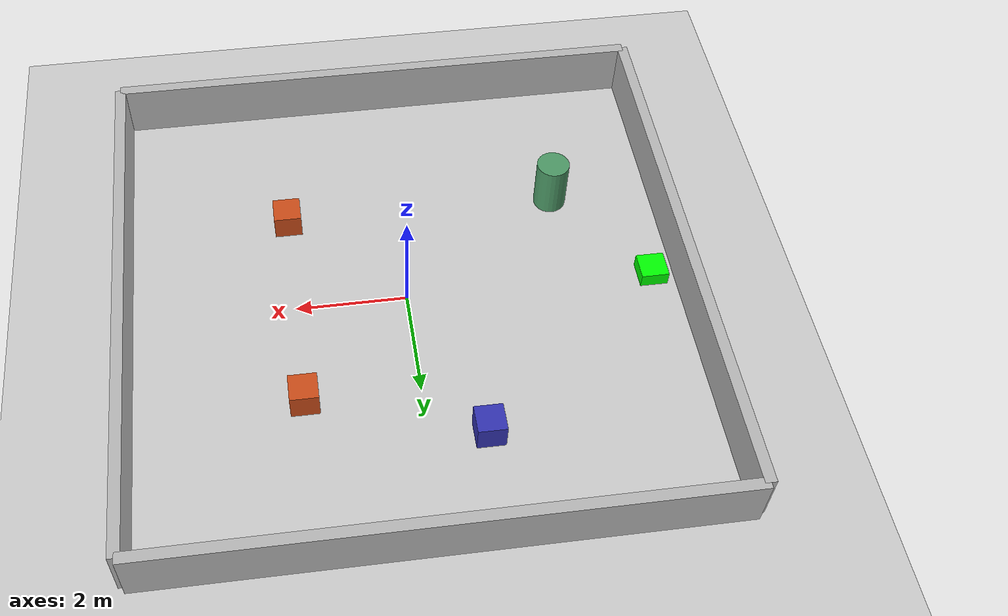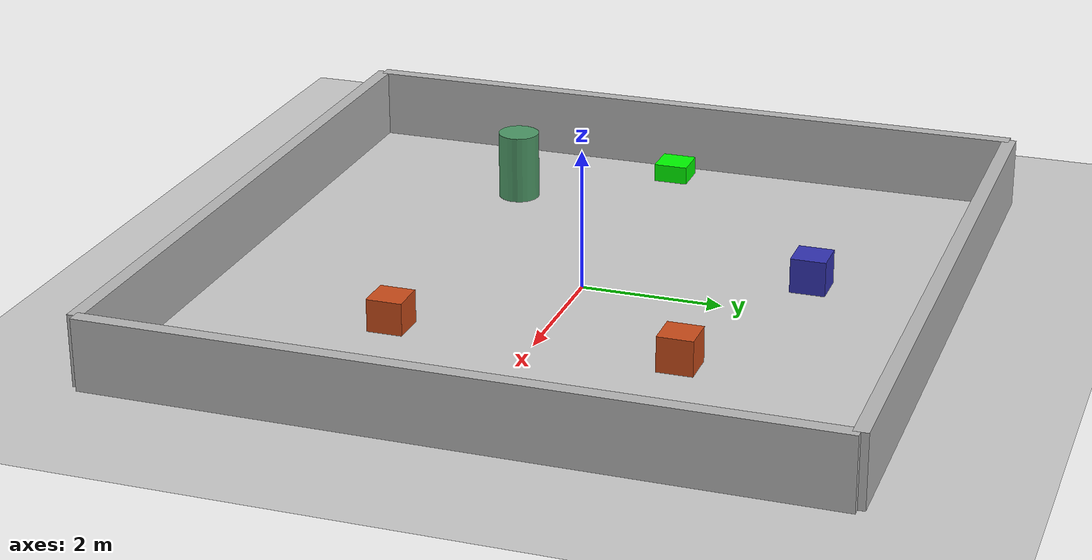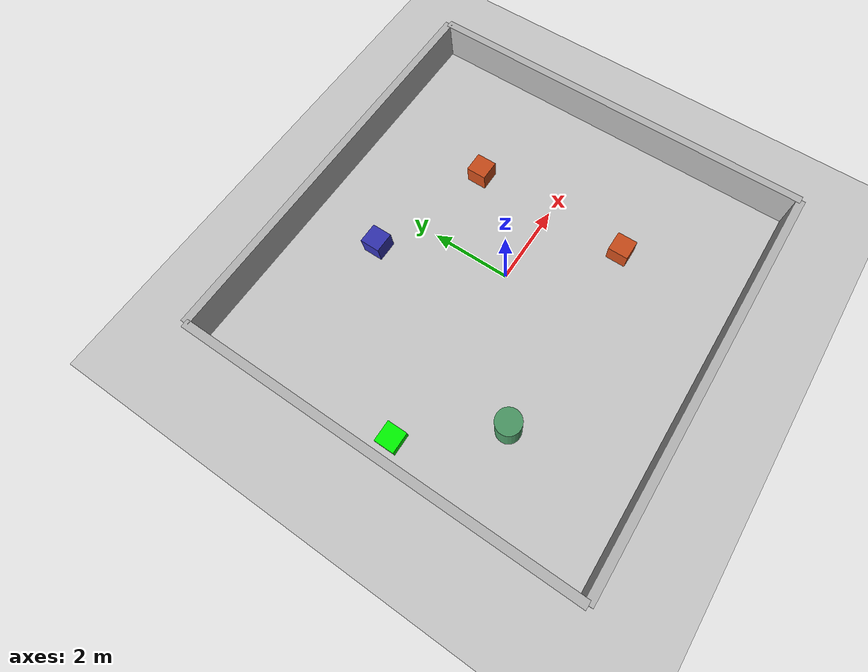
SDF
<?xml version="1.0" ?>
<sdf version="1.6">
  <world name="simple_world">

    <physics type="ode">
      <max_step_size>0.001</max_step_size>
      <real_time_factor>1</real_time_factor>
    </physics>

    <include>
      <uri>model://ground_plane</uri>
    </include>

    <include>
      <uri>model://sun</uri>
    </include>

    <model name="wall_1">
      <static>true</static>
      <pose>0 5 0.5 0 0 0</pose>
      <link name="link">
        <collision name="collision">
          <geometry>
            <box>
              <size>10 0.2 1</size>
            </box>
          </geometry>
        </collision>
        <visual name="visual">
          <geometry>
            <box>
              <size>10 0.2 1</size>
            </box>
          </geometry>
        </visual>
      </link>
    </model>

    <model name="wall_2">
      <static>true</static>
      <pose>0 -5 0.5 0 0 0</pose>
      <link name="link">
        <collision name="collision">
          <geometry>
            <box>
              <size>10 0.2 1</size>
            </box>
          </geometry>
        </collision>
        <visual name="visual">
          <geometry>
            <box>
              <size>10 0.2 1</size>
            </box>
          </geometry>
        </visual>
      </link>
    </model>

    <model name="wall_3">
      <static>true</static>
      <pose>5 0 0.5 0 0 0</pose>
      <link name="link">
        <collision name="collision">
          <geometry>
            <box>
              <size>0.2 10 1</size>
            </box>
          </geometry>
        </collision>
        <visual name="visual">
          <geometry>
            <box>
              <size>0.2 10 1</size>
            </box>
          </geometry>
        </visual>
      </link>
    </model>

    <model name="wall_4">
      <static>true</static>
      <pose>-5 0 0.5 0 0 0</pose>
      <link name="link">
        <collision name="collision">
          <geometry>
            <box>
              <size>0.2 10 1</size>
            </box>
          </geometry>
        </collision>
        <visual name="visual">
          <geometry>
            <box>
              <size>0.2 10 1</size>
            </box>
          </geometry>
        </visual>
      </link>
    </model>

    <model name="charging_dock">
      <static>true</static>
      <pose>-4.5 0 0 0 0 0</pose>
      <link name="link">
        <collision name="collision">
          <geometry>
            <box>
              <size>0.5 0.5 0.5</size>
            </box>
          </geometry>
        </collision>
        <visual name="visual">
          <geometry>
            <box>
              <size>0.5 0.5 0.5</size>
            </box>
          </geometry>
          <material>
            <ambient>0.0 1.0 0.0 1</ambient>
          </material>
        </visual>
      </link>
    </model>

    <model name="crate_1">
      <static>true</static>
      <pose>2 2 0.25 0 0 0</pose>
      <link name="link">
        <collision name="collision">
          <geometry>
            <box><size>0.5 0.5 0.5</size></box>
          </geometry>
        </collision>
        <visual name="visual">
          <geometry>
            <box><size>0.5 0.5 0.5</size></box>
          </geometry>
          <material>
            <ambient>0.8 0.3 0.1 1</ambient>
          </material>
        </visual>
      </link>
    </model>

    <model name="crate_2">
      <static>true</static>
      <pose>-1 3 0.25 0 0 0</pose>
      <link name="link">
        <collision name="collision">
          <geometry>
            <box><size>0.5 0.5 0.5</size></box>
          </geometry>
        </collision>
        <visual name="visual">
          <geometry>
            <box><size>0.5 0.5 0.5</size></box>
          </geometry>
          <material>
            <ambient>0.2 0.2 0.7 1</ambient>
          </material>
        </visual>
      </link>
    </model>

    <model name="pillar">
      <static>true</static>
      <pose>-3 -2 0.5 0 0 0</pose>
      <link name="link">
        <collision name="collision">
          <geometry>
            <cylinder><radius>0.3</radius><length>1.0</length></cylinder>
          </geometry>
        </collision>
        <visual name="visual">
          <geometry>
            <cylinder><radius>0.3</radius><length>1.0</length></cylinder>
          </geometry>
          <material>
            <ambient>0.3 0.6 0.4 1</ambient> <!-- Gray -->
          </material>
        </visual>
      </link>
    </model>

    <model name="crate_3">
      <static>true</static>
      <pose>2 -2 0.2 0 0 0</pose>
      <link name="link">
        <collision name="collision">
          <geometry>
            <box><size>0.5 0.5 0.5</size></box>
          </geometry>
        </collision>
        <visual name="visual">
          <geometry>
            <box><size>0.5 0.5 0.5</size></box>
          </geometry>
          <material>
            <ambient>0.8 0.3 0.1 1</ambient> <!-- Brownish -->
          </material>
        </visual>
      </link>
    </model>

  </world>
</sdf>
